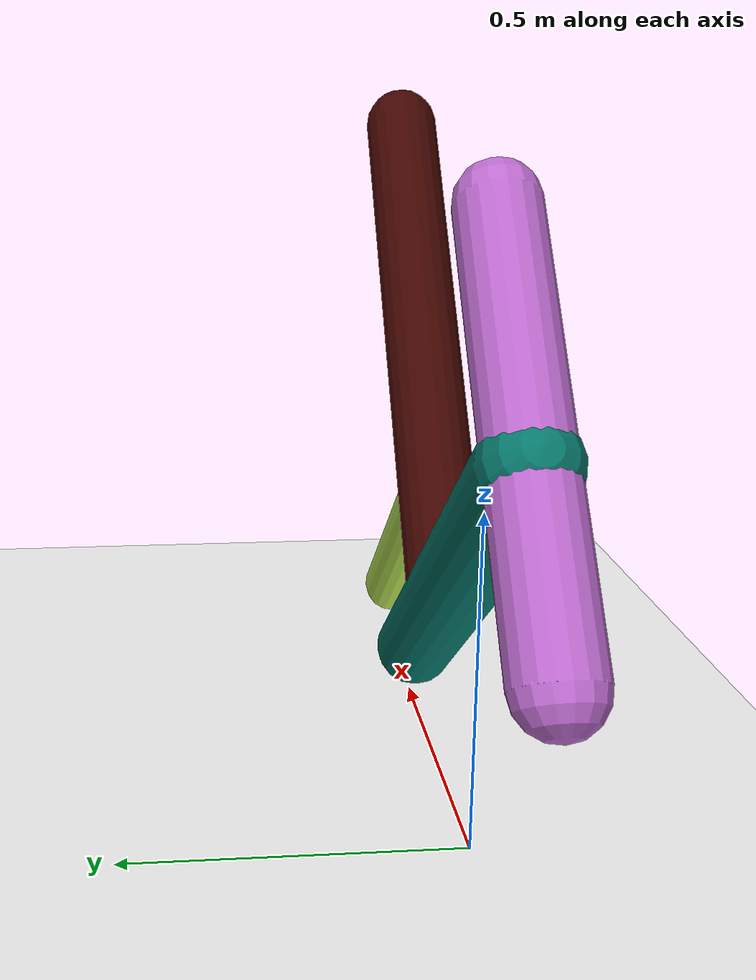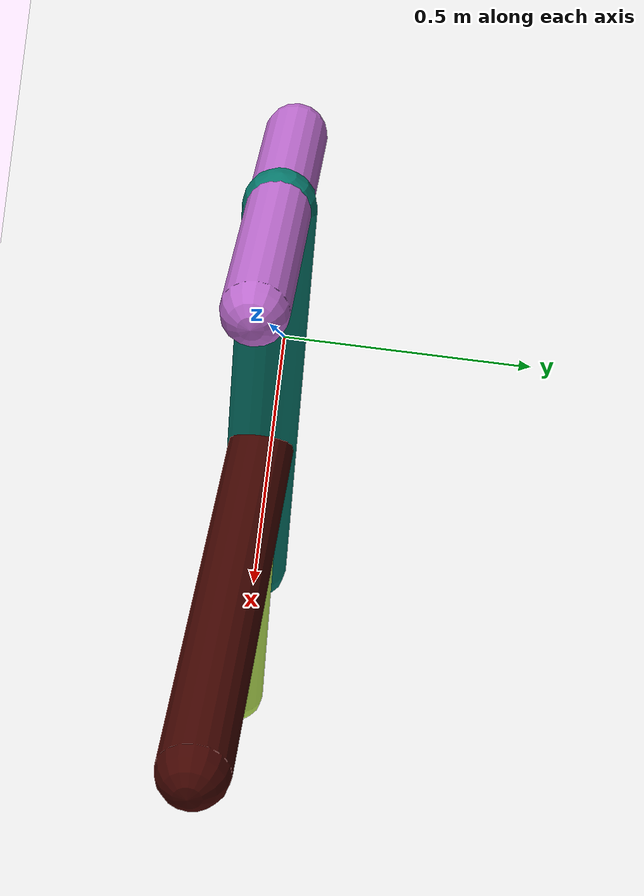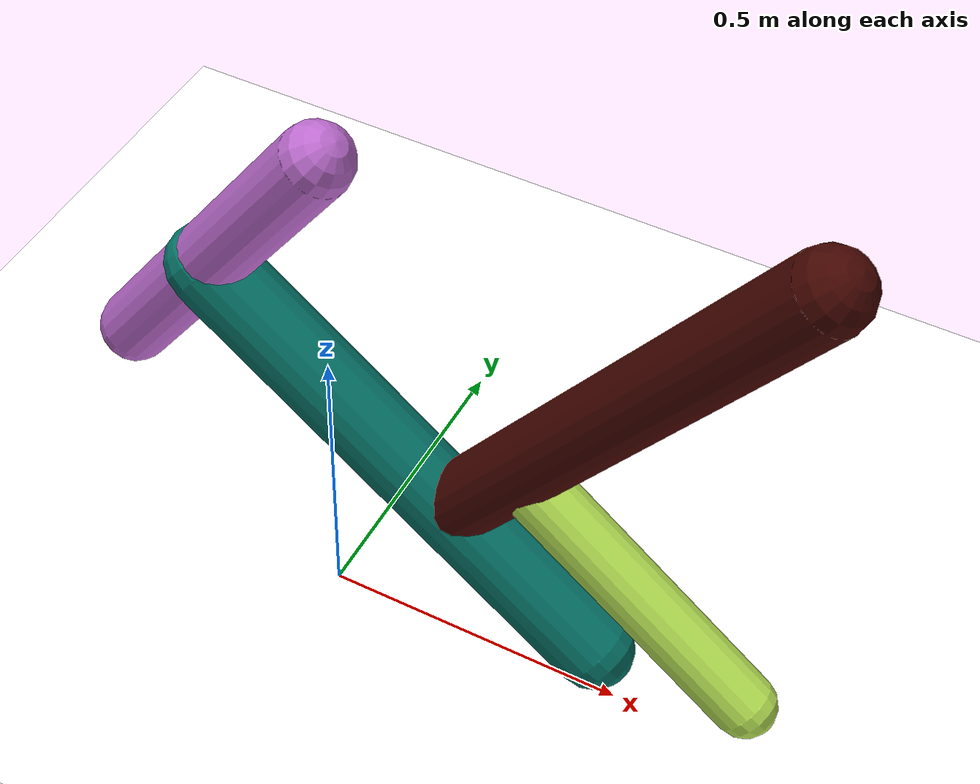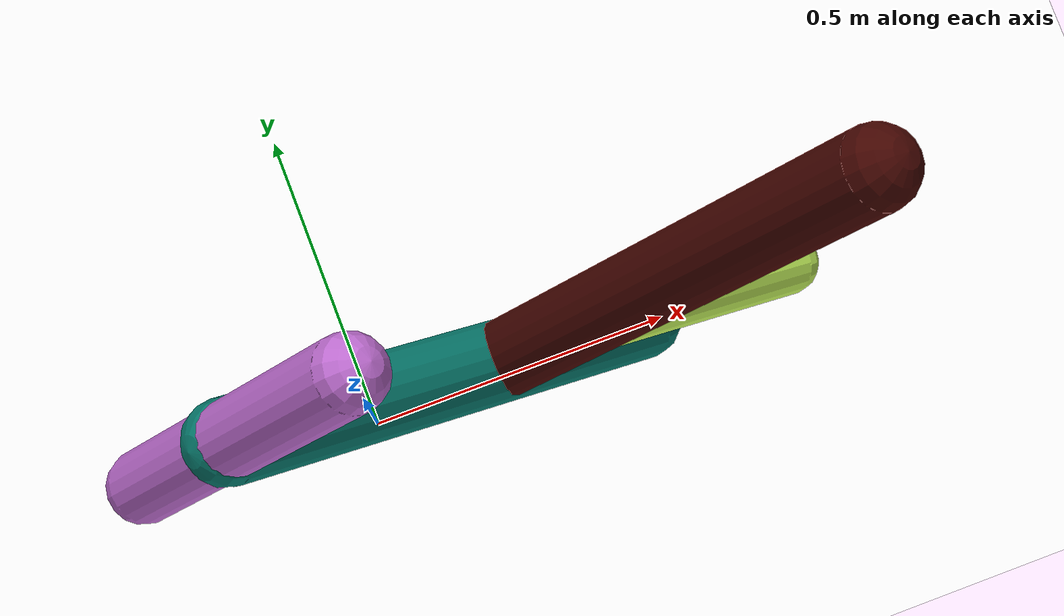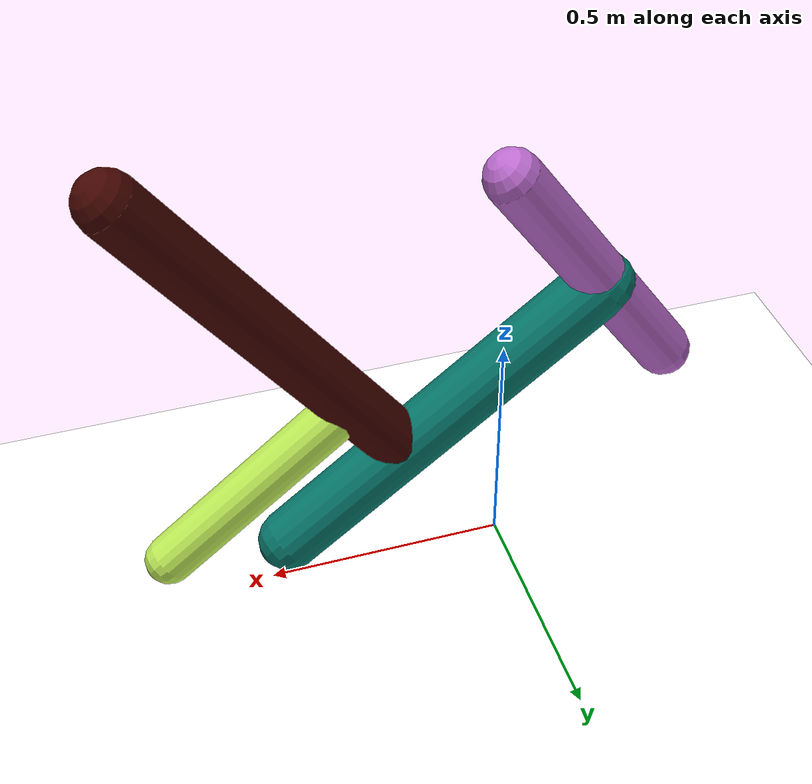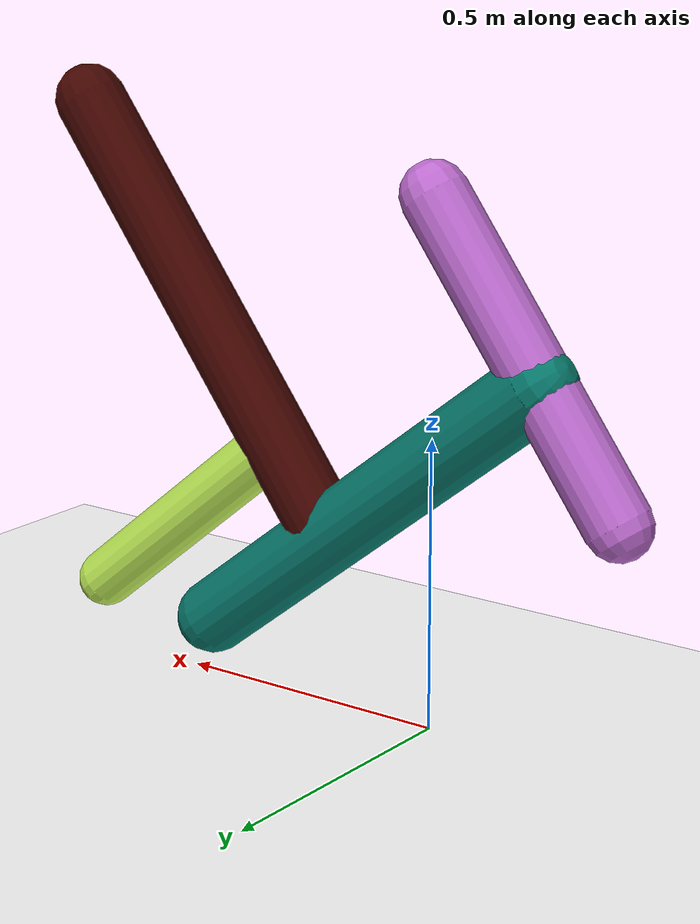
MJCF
<mujoco model="morphology">
  <option timestep="0.01"/>
  <default>
    <default class="/"/>
  </default>
  <asset>
    <texture name="texplane" type="2d" builtin="checker" rgb1="0.1 0.2 0.3" rgb2="0.2 0.3 0.4" width="300" height="300"/>
    <material name="MatPlane" class="/" texture="texplane" texrepeat="20 20" specular="1" shininess="1" reflectance="0.5"/>
  </asset>
  <worldbody>
    <light name="//unnamed_light_0" class="/" directional="true" pos="0 0 1.5" dir="0 0 -1.3" cutoff="1e+02" exponent="1" diffuse="1 1 1" specular="0.1 0.1 0.1"/>
    <geom name="ground" class="/" type="plane" size="15 15 0.5" material="MatPlane" rgba="1 1 1 1"/>
    <body name="body" pos="0 0 0.9">
      <geom name="geom0" class="/" type="capsule" contype="1" conaffinity="1" condim="3" size="0.057" rgba="0.74 0.42 0.81 1" friction="0.4 0.1 0.1" fromto="0 0 0 -0.35 0 -0.48"/>
      <body name="body1" pos="-0.2 0 -0.28">
        <geom name="geom1" class="/" type="capsule" contype="1" conaffinity="1" condim="3" size="0.065" rgba="0.024 0.47 0.42 1" friction="0.4 0.1 0.1" fromto="0 0 0 0.66 0 -0.52"/>
        <body name="body2" pos="0.41 0 -0.32">
          <geom name="geom2" class="/" type="capsule" contype="1" conaffinity="1" condim="3" size="0.061" rgba="0.26 0.02 0.0052 1" friction="0.4 0.1 0.1" fromto="0 0 0 0.51 0 0.69"/>
          <body name="body3" pos="0.11 0 0.14">
            <geom name="geom3" class="/" type="capsule" contype="1" conaffinity="1" condim="3" size="0.051" rgba="0.76 0.94 0.35 1" friction="0.4 0.1 0.1" fromto="0 0 0 0.39 0 -0.32"/>
            <joint name="joint3" class="/" type="hinge" axis="0 1 0" limited="true" stiffness="20" range="-41 41" armature="0.1" damping="2"/>
          </body>
          <joint name="joint2" class="/" type="hinge" axis="0 1 0" limited="true" stiffness="20" range="-66 66" armature="0.1" damping="2"/>
        </body>
        <joint name="joint1" class="/" type="hinge" axis="0 1 0" limited="true" stiffness="20" range="-48 48" armature="0.1" damping="2"/>
      </body>
      <joint name="rootx" class="/" type="slide" axis="1 0 0" limited="false" stiffness="0" armature="0" damping="0"/>
      <joint name="rootz" class="/" type="slide" axis="0 0 1" limited="false" stiffness="0" armature="0" damping="0"/>
      <joint name="rooty" class="/" type="hinge" axis="0 1 0" limited="false" stiffness="0" armature="0" damping="0"/>
    </body>
  </worldbody>
  <actuator>
    <motor name="motor3" class="/" ctrllimited="true" ctrlrange="-1 1" gear="1.3e+02" joint="joint3"/>
    <motor name="motor2" class="/" ctrllimited="true" ctrlrange="-1 1" gear="1.1e+02" joint="joint2"/>
    <motor name="motor1" class="/" ctrllimited="true" ctrlrange="-1 1" gear="1.3e+02" joint="joint1"/>
  </actuator>
  <sensor>
    <subtreelinvel name="velocity" body="body"/>
  </sensor>
</mujoco>
